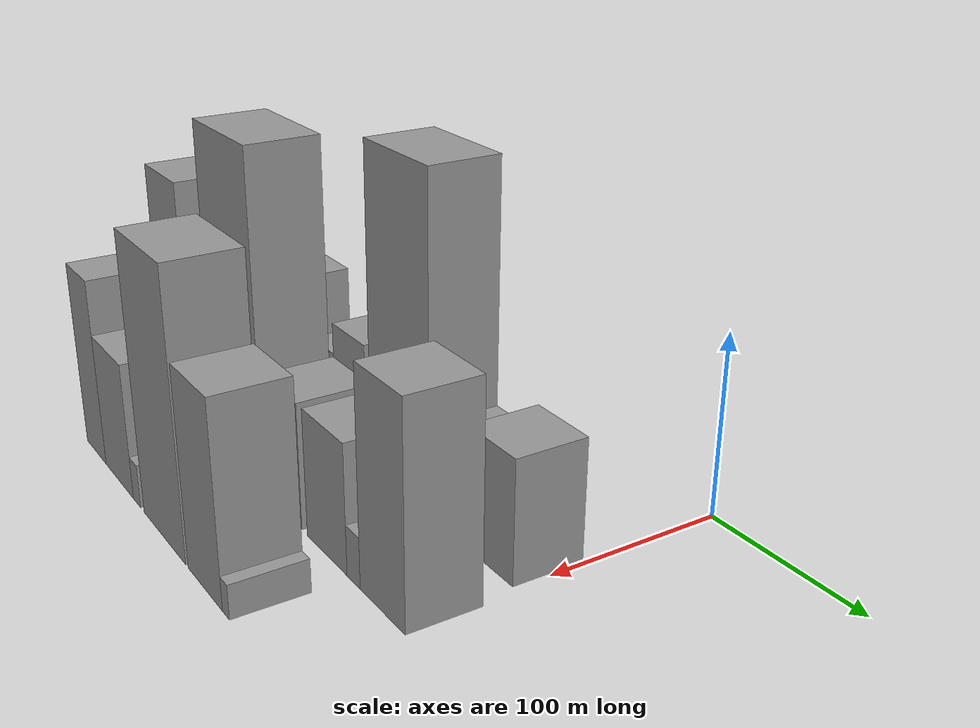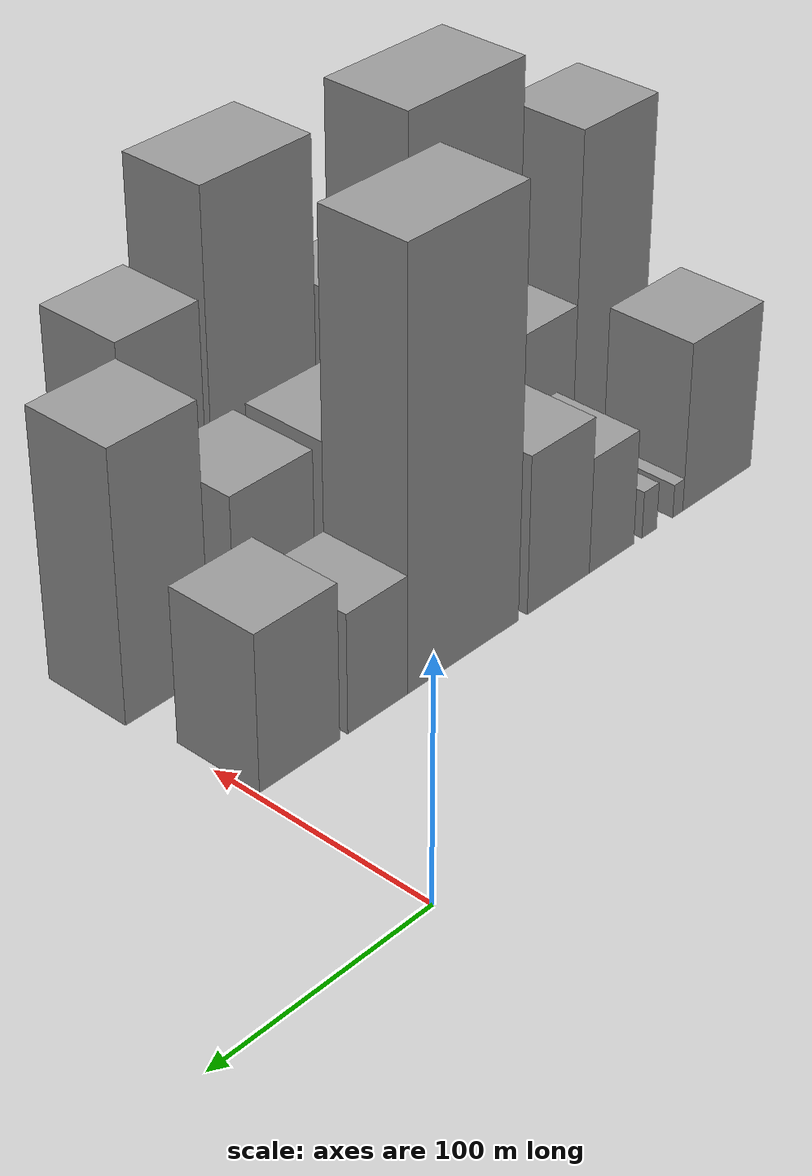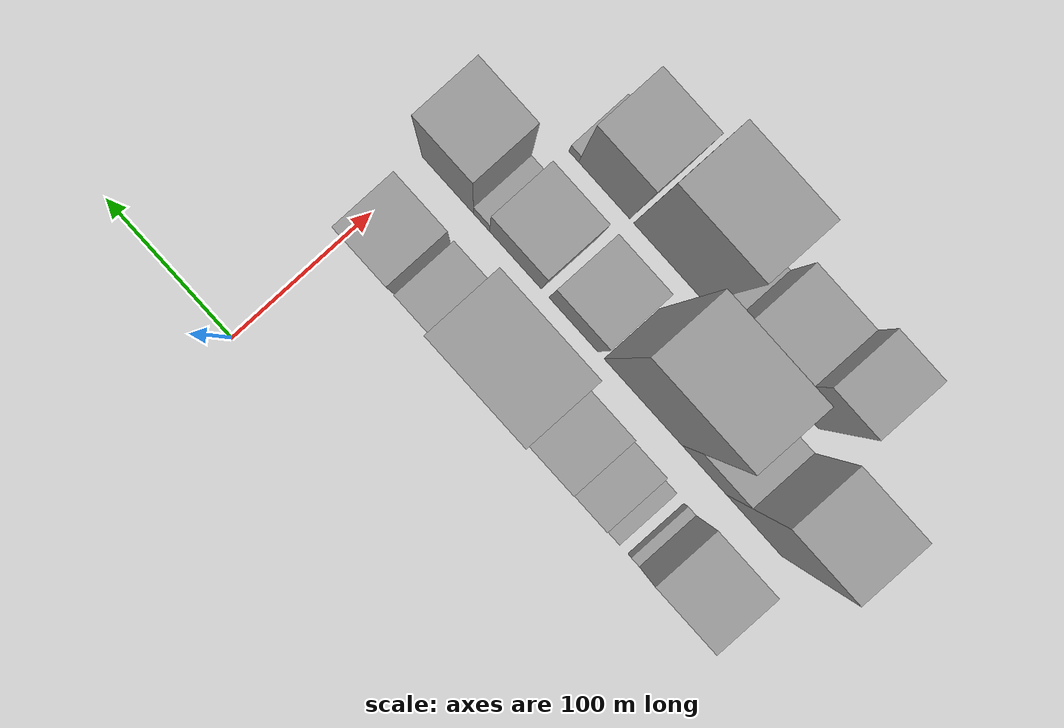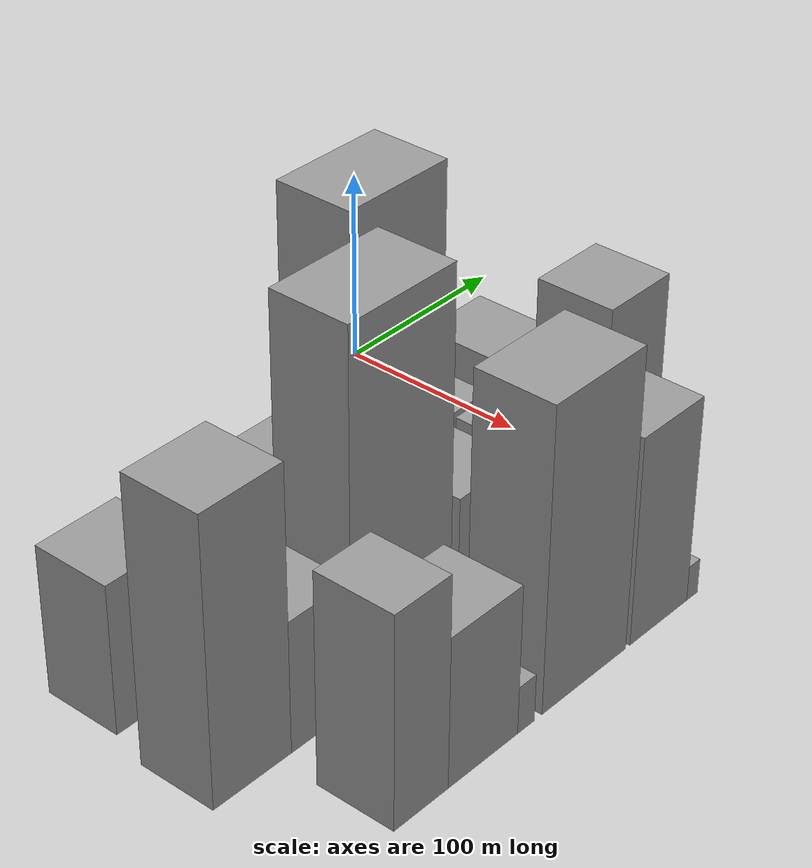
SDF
<sdf version="1.6">
 <world name="default">
  <model name="building_21">
   <static>1</static>
   <pose>100.0000 -254.5551 0 0.000000 0.000000 0.000000</pose>
   <link name="link">
    <pose>0 0 37.50 0 0 0</pose>
    <collision name="collision"><geometry><box><size>40.0000 43.6780 75.0000</size></box></geometry></collision>
    <visual name="visual">
     <cast_shadows>0</cast_shadows>
     <geometry><box><size>40.0000 43.6780 75.0000</size></box></geometry>
     <material>
      <script>
       <uri>model://grey_wall/materials/scripts</uri>
       <uri>model://grey_wall/materials/textures</uri>
       <name>vrc/grey_wall</name>
      </script>
     </material>
    </visual>
   </link>
  </model>
  <model name="building_22">
   <static>1</static>
   <pose>100.0000 -229.6070 0 0.000000 0.000000 0.000000</pose>
   <link name="link">
    <pose>0 0 7.50 0 0 0</pose>
    <collision name="collision"><geometry><box><size>40.0000 6.2183 15.0000</size></box></geometry></collision>
    <visual name="visual">
     <cast_shadows>0</cast_shadows>
     <geometry><box><size>40.0000 6.2183 15.0000</size></box></geometry>
     <material>
      <script>
       <uri>model://grey_wall/materials/scripts</uri>
       <uri>model://grey_wall/materials/textures</uri>
       <name>vrc/grey_wall</name>
      </script>
     </material>
    </visual>
   </link>
  </model>
  <model name="building_23">
   <static>1</static>
   <pose>100.0000 -211.9907 0 0.000000 0.000000 0.000000</pose>
   <link name="link">
    <pose>0 0 10.50 0 0 0</pose>
    <collision name="collision"><geometry><box><size>40.0000 9.0143 21.0000</size></box></geometry></collision>
    <visual name="visual">
     <cast_shadows>0</cast_shadows>
     <geometry><box><size>40.0000 9.0143 21.0000</size></box></geometry>
     <material>
      <script>
       <uri>model://grey_wall/materials/scripts</uri>
       <uri>model://grey_wall/materials/textures</uri>
       <name>vrc/grey_wall</name>
      </script>
     </material>
    </visual>
   </link>
  </model>
  <model name="building_24">
   <static>1</static>
   <pose>100.0000 -189.1800 0 0.000000 0.000000 0.000000</pose>
   <link name="link">
    <pose>0 0 25.50 0 0 0</pose>
    <collision name="collision"><geometry><box><size>40.0000 26.6072 51.0000</size></box></geometry></collision>
    <visual name="visual">
     <cast_shadows>0</cast_shadows>
     <geometry><box><size>40.0000 26.6072 51.0000</size></box></geometry>
     <material>
      <script>
       <uri>model://grey_wall/materials/scripts</uri>
       <uri>model://grey_wall/materials/textures</uri>
       <name>vrc/grey_wall</name>
      </script>
     </material>
    </visual>
   </link>
  </model>
  <model name="building_25">
   <static>1</static>
   <pose>100.0000 -158.0435 0 0.000000 0.000000 0.000000</pose>
   <link name="link">
    <pose>0 0 34.50 0 0 0</pose>
    <collision name="collision"><geometry><box><size>40.0000 35.6658 69.0000</size></box></geometry></collision>
    <visual name="visual">
     <cast_shadows>0</cast_shadows>
     <geometry><box><size>40.0000 35.6658 69.0000</size></box></geometry>
     <material>
      <script>
       <uri>model://grey_wall/materials/scripts</uri>
       <uri>model://grey_wall/materials/textures</uri>
       <name>vrc/grey_wall</name>
      </script>
     </material>
    </visual>
   </link>
  </model>
  <model name="building_26">
   <static>1</static>
   <pose>100.0000 -105.2932 0 0.000000 0.000000 0.000000</pose>
   <link name="link">
    <pose>0 0 90.00 0 0 0</pose>
    <collision name="collision"><geometry><box><size>40.0000 59.8347 180.0000</size></box></geometry></collision>
    <visual name="visual">
     <cast_shadows>0</cast_shadows>
     <geometry><box><size>40.0000 59.8347 180.0000</size></box></geometry>
     <material>
      <script>
       <uri>model://grey_wall/materials/scripts</uri>
       <uri>model://grey_wall/materials/textures</uri>
       <name>vrc/grey_wall</name>
      </script>
     </material>
    </visual>
   </link>
  </model>
  <model name="building_27">
   <static>1</static>
   <pose>100.0000 -60.1227 0 0.000000 0.000000 0.000000</pose>
   <link name="link">
    <pose>0 0 25.50 0 0 0</pose>
    <collision name="collision"><geometry><box><size>40.0000 30.5063 51.0000</size></box></geometry></collision>
    <visual name="visual">
     <cast_shadows>0</cast_shadows>
     <geometry><box><size>40.0000 30.5063 51.0000</size></box></geometry>
     <material>
      <script>
       <uri>model://grey_wall/materials/scripts</uri>
       <uri>model://grey_wall/materials/textures</uri>
       <name>vrc/grey_wall</name>
      </script>
     </material>
    </visual>
   </link>
  </model>
  <model name="building_28">
   <static>1</static>
   <pose>100.0000 -21.3664 0 0.000000 0.000000 0.000000</pose>
   <link name="link">
    <pose>0 0 33.00 0 0 0</pose>
    <collision name="collision"><geometry><box><size>40.0000 39.0064 66.0000</size></box></geometry></collision>
    <visual name="visual">
     <cast_shadows>0</cast_shadows>
     <geometry><box><size>40.0000 39.0064 66.0000</size></box></geometry>
     <material>
      <script>
       <uri>model://grey_wall/materials/scripts</uri>
       <uri>model://grey_wall/materials/textures</uri>
       <name>vrc/grey_wall</name>
      </script>
     </material>
    </visual>
   </link>
  </model>
  <model name="building_73">
   <static>1</static>
   <pose>160.0000 -260.2073 0 0.000000 0.000000 0.000000</pose>
   <link name="link">
    <pose>0 0 70.50 0 0 0</pose>
    <collision name="collision"><geometry><box><size>40.0000 44.1222 141.0000</size></box></geometry></collision>
    <visual name="visual">
     <cast_shadows>0</cast_shadows>
     <geometry><box><size>40.0000 44.1222 141.0000</size></box></geometry>
     <material>
      <script>
       <uri>model://grey_wall/materials/scripts</uri>
       <uri>model://grey_wall/materials/textures</uri>
       <name>vrc/grey_wall</name>
      </script>
     </material>
    </visual>
   </link>
  </model>
  <model name="building_74">
   <static>1</static>
   <pose>160.0000 -220.4132 0 0.000000 0.000000 0.000000</pose>
   <link name="link">
    <pose>0 0 33.00 0 0 0</pose>
    <collision name="collision"><geometry><box><size>40.0000 35.4659 66.0000</size></box></geometry></collision>
    <visual name="visual">
     <cast_shadows>0</cast_shadows>
     <geometry><box><size>40.0000 35.4659 66.0000</size></box></geometry>
     <material>
      <script>
       <uri>model://grey_wall/materials/scripts</uri>
       <uri>model://grey_wall/materials/textures</uri>
       <name>vrc/grey_wall</name>
      </script>
     </material>
    </visual>
   </link>
  </model>
  <model name="building_75">
   <static>1</static>
   <pose>160.0000 -171.7426 0 0.000000 0.000000 0.000000</pose>
   <link name="link">
    <pose>0 0 91.50 0 0 0</pose>
    <collision name="collision"><geometry><box><size>40.0000 61.8753 183.0000</size></box></geometry></collision>
    <visual name="visual">
     <cast_shadows>0</cast_shadows>
     <geometry><box><size>40.0000 61.8753 183.0000</size></box></geometry>
     <material>
      <script>
       <uri>model://grey_wall/materials/scripts</uri>
       <uri>model://grey_wall/materials/textures</uri>
       <name>vrc/grey_wall</name>
      </script>
     </material>
    </visual>
   </link>
  </model>
  <model name="building_76">
   <static>1</static>
   <pose>160.0000 -116.3303 0 0.000000 0.000000 0.000000</pose>
   <link name="link">
    <pose>0 0 34.50 0 0 0</pose>
    <collision name="collision"><geometry><box><size>40.0000 38.9494 69.0000</size></box></geometry></collision>
    <visual name="visual">
     <cast_shadows>0</cast_shadows>
     <geometry><box><size>40.0000 38.9494 69.0000</size></box></geometry>
     <material>
      <script>
       <uri>model://grey_wall/materials/scripts</uri>
       <uri>model://grey_wall/materials/textures</uri>
       <name>vrc/grey_wall</name>
      </script>
     </material>
    </visual>
   </link>
  </model>
  <model name="building_77">
   <static>1</static>
   <pose>160.0000 -70.2654 0 0.000000 0.000000 0.000000</pose>
   <link name="link">
    <pose>0 0 34.50 0 0 0</pose>
    <collision name="collision"><geometry><box><size>40.0000 41.1803 69.0000</size></box></geometry></collision>
    <visual name="visual">
     <cast_shadows>0</cast_shadows>
     <geometry><box><size>40.0000 41.1803 69.0000</size></box></geometry>
     <material>
      <script>
       <uri>model://grey_wall/materials/scripts</uri>
       <uri>model://grey_wall/materials/textures</uri>
       <name>vrc/grey_wall</name>
      </script>
     </material>
    </visual>
   </link>
  </model>
  <model name="building_78">
   <static>1</static>
   <pose>160.0000 -43.2886 0 0.000000 0.000000 0.000000</pose>
   <link name="link">
    <pose>0 0 13.50 0 0 0</pose>
    <collision name="collision"><geometry><box><size>40.0000 12.7735 27.0000</size></box></geometry></collision>
    <visual name="visual">
     <cast_shadows>0</cast_shadows>
     <geometry><box><size>40.0000 12.7735 27.0000</size></box></geometry>
     <material>
      <script>
       <uri>model://grey_wall/materials/scripts</uri>
       <uri>model://grey_wall/materials/textures</uri>
       <name>vrc/grey_wall</name>
      </script>
     </material>
    </visual>
   </link>
  </model>
  <model name="building_79">
   <static>1</static>
   <pose>160.0000 -16.5319 0 0.000000 0.000000 0.000000</pose>
   <link name="link">
    <pose>0 0 57.00 0 0 0</pose>
    <collision name="collision"><geometry><box><size>40.0000 40.7398 114.0000</size></box></geometry></collision>
    <visual name="visual">
     <cast_shadows>0</cast_shadows>
     <geometry><box><size>40.0000 40.7398 114.0000</size></box></geometry>
     <material>
      <script>
       <uri>model://grey_wall/materials/scripts</uri>
       <uri>model://grey_wall/materials/textures</uri>
       <name>vrc/grey_wall</name>
      </script>
     </material>
    </visual>
   </link>
  </model>
  <model name="building_129">
   <static>1</static>
   <pose>220.0000 -228.8766 0 0.000000 0.000000 0.000000</pose>
   <link name="link">
    <pose>0 0 52.50 0 0 0</pose>
    <collision name="collision"><geometry><box><size>40.0000 32.1422 105.0000</size></box></geometry></collision>
    <visual name="visual">
     <cast_shadows>0</cast_shadows>
     <geometry><box><size>40.0000 32.1422 105.0000</size></box></geometry>
     <material>
      <script>
       <uri>model://grey_wall/materials/scripts</uri>
       <uri>model://grey_wall/materials/textures</uri>
       <name>vrc/grey_wall</name>
      </script>
     </material>
    </visual>
   </link>
  </model>
  <model name="building_130">
   <static>1</static>
   <pose>220.0000 -191.2444 0 0.000000 0.000000 0.000000</pose>
   <link name="link">
    <pose>0 0 37.50 0 0 0</pose>
    <collision name="collision"><geometry><box><size>40.0000 43.1221 75.0000</size></box></geometry></collision>
    <visual name="visual">
     <cast_shadows>0</cast_shadows>
     <geometry><box><size>40.0000 43.1221 75.0000</size></box></geometry>
     <material>
      <script>
       <uri>model://grey_wall/materials/scripts</uri>
       <uri>model://grey_wall/materials/textures</uri>
       <name>vrc/grey_wall</name>
      </script>
     </material>
    </visual>
   </link>
  </model>
  <model name="building_131">
   <static>1</static>
   <pose>220.0000 -164.2995 0 0.000000 0.000000 0.000000</pose>
   <link name="link">
    <pose>0 0 12.00 0 0 0</pose>
    <collision name="collision"><geometry><box><size>40.0000 10.7676 24.0000</size></box></geometry></collision>
    <visual name="visual">
     <cast_shadows>0</cast_shadows>
     <geometry><box><size>40.0000 10.7676 24.0000</size></box></geometry>
     <material>
      <script>
       <uri>model://grey_wall/materials/scripts</uri>
       <uri>model://grey_wall/materials/textures</uri>
       <name>vrc/grey_wall</name>
      </script>
     </material>
    </visual>
   </link>
  </model>
  <model name="building_132">
   <static>1</static>
   <pose>220.0000 -125.7741 0 0.000000 0.000000 0.000000</pose>
   <link name="link">
    <pose>0 0 75.00 0 0 0</pose>
    <collision name="collision"><geometry><box><size>40.0000 56.2834 150.0000</size></box></geometry></collision>
    <visual name="visual">
     <cast_shadows>0</cast_shadows>
     <geometry><box><size>40.0000 56.2834 150.0000</size></box></geometry>
     <material>
      <script>
       <uri>model://grey_wall/materials/scripts</uri>
       <uri>model://grey_wall/materials/textures</uri>
       <name>vrc/grey_wall</name>
      </script>
     </material>
    </visual>
   </link>
  </model>
  <model name="building_133">
   <static>1</static>
   <pose>220.0000 -74.2820 0 0.000000 0.000000 0.000000</pose>
   <link name="link">
    <pose>0 0 52.50 0 0 0</pose>
    <collision name="collision"><geometry><box><size>40.0000 40.7007 105.0000</size></box></geometry></collision>
    <visual name="visual">
     <cast_shadows>0</cast_shadows>
     <geometry><box><size>40.0000 40.7007 105.0000</size></box></geometry>
     <material>
      <script>
       <uri>model://grey_wall/materials/scripts</uri>
       <uri>model://grey_wall/materials/textures</uri>
       <name>vrc/grey_wall</name>
      </script>
     </material>
    </visual>
   </link>
  </model>
  <model name="building_134">
   <static>1</static>
   <pose>220.0000 -50.0103 0 0.000000 0.000000 0.000000</pose>
   <link name="link">
    <pose>0 0 9.00 0 0 0</pose>
    <collision name="collision"><geometry><box><size>40.0000 7.8428 18.0000</size></box></geometry></collision>
    <visual name="visual">
     <cast_shadows>0</cast_shadows>
     <geometry><box><size>40.0000 7.8428 18.0000</size></box></geometry>
     <material>
      <script>
       <uri>model://grey_wall/materials/scripts</uri>
       <uri>model://grey_wall/materials/textures</uri>
       <name>vrc/grey_wall</name>
      </script>
     </material>
    </visual>
   </link>
  </model>
 </world>
</sdf>
